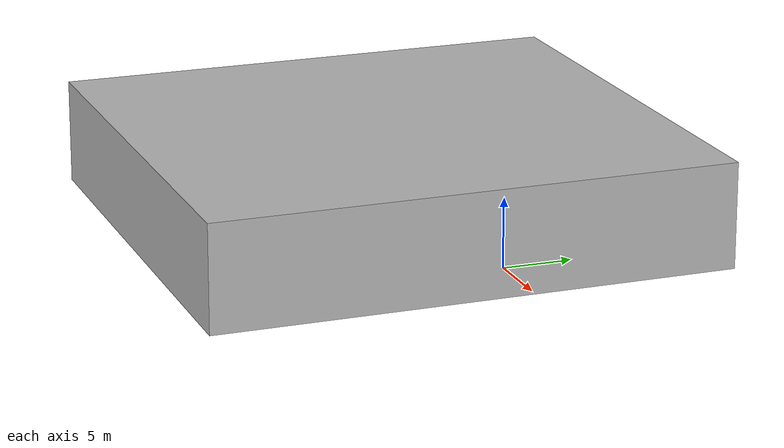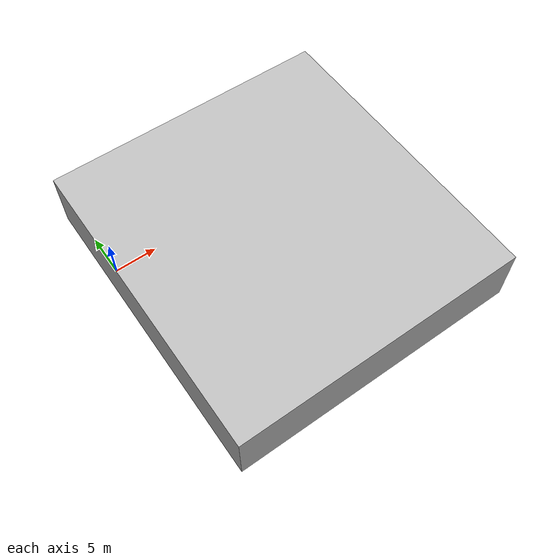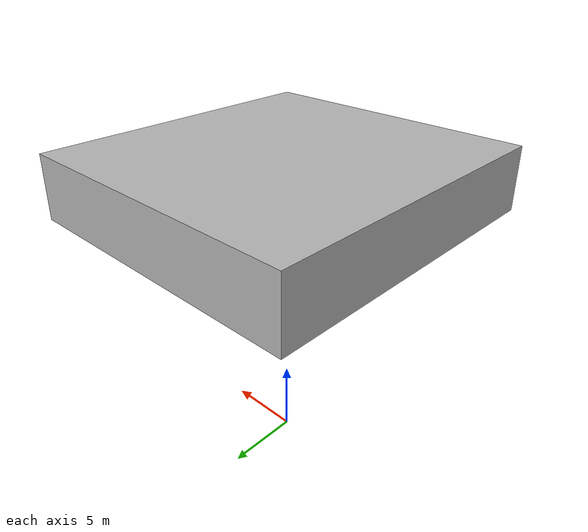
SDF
<?xml version="1.0"?>
<sdf version="1.6">
    <model name="satsop_floor01_tile11">
        <static>true</static>
        <link name="base_link">
            <collision name="collision">
                <pose>0 0 0 0 0 0</pose>
                <geometry>
                    <mesh>
                        <uri>meshes/11.dae</uri>
                        <scale>1.0 1.0 1.0</scale>
                    </mesh>
                </geometry>
            </collision>
            <visual name="visual">
                <geometry>
                    <mesh>
                        <uri>meshes/11.dae</uri>
                    </mesh>
                </geometry>
            </visual>
        </link>
    </model>
</sdf>
